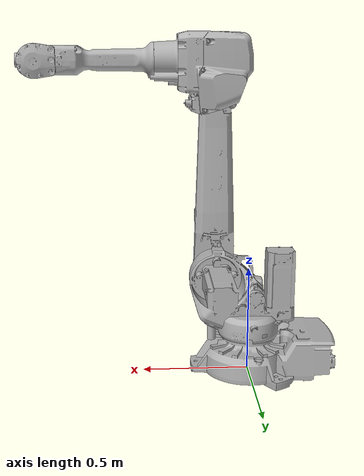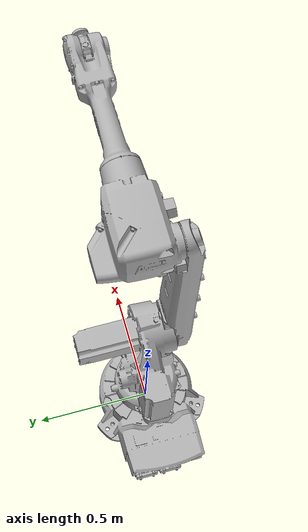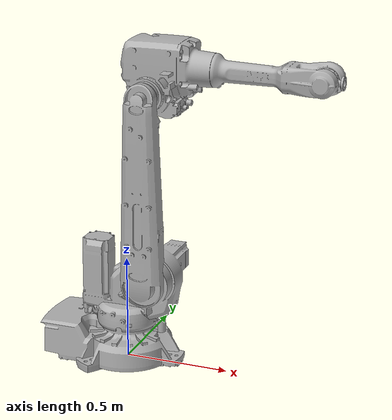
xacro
<?xml version="1.0" ?>
<robot name="IRB2600_12kg-185" xmlns:xacro="http://www.ros.org/wiki/xacro">

<xacro:include filename="$(find IRB2600_12kg-185_description)/urdf/materials.xacro" />
<xacro:include filename="$(find IRB2600_12kg-185_description)/urdf/IRB2600_12kg-185.trans" />
<xacro:include filename="$(find IRB2600_12kg-185_description)/urdf/IRB2600_12kg-185.gazebo" />
<link name="base_link">
  <inertial>
    <origin xyz="-0.09299244505879704 0.00040023906755372736 0.09590244830640034" rpy="0 0 0"/>
    <mass value="250.4884403422575"/>
    <inertia ixx="3.308396" iyy="6.826966" izz="8.611106" ixy="0.029678" iyz="0.002181" ixz="0.180461"/>
  </inertial>
  <visual>
    <origin xyz="0 0 0" rpy="0 0 0"/>
    <geometry>
      <mesh filename="package://IRB2600_12kg-185_description/meshes/base_link.stl" scale="0.001 0.001 0.001"/>
    </geometry>
    <material name="silver"/>
  </visual>
  <collision>
    <origin xyz="0 0 0" rpy="0 0 0"/>
    <geometry>
      <mesh filename="package://IRB2600_12kg-185_description/meshes/base_link.stl" scale="0.001 0.001 0.001"/>
    </geometry>
  </collision>
</link>

<link name="IRB2600_12kg-185_LINK1_CAD_rev02_v1_1">
  <inertial>
    <origin xyz="0.043083885652768904 0.007026630410738739 0.15972284536270456" rpy="0 0 0"/>
    <mass value="187.86725665499122"/>
    <inertia ixx="3.104491" iyy="4.749737" izz="4.49943" ixy="-0.075738" iyz="-0.046785" ixz="-0.326302"/>
  </inertial>
  <visual>
    <origin xyz="-0.0 0.0 -0.23" rpy="0 0 0"/>
    <geometry>
      <mesh filename="package://IRB2600_12kg-185_description/meshes/IRB2600_12kg-185_LINK1_CAD_rev02_v1_1.stl" scale="0.001 0.001 0.001"/>
    </geometry>
    <material name="silver"/>
  </visual>
  <collision>
    <origin xyz="-0.0 0.0 -0.23" rpy="0 0 0"/>
    <geometry>
      <mesh filename="package://IRB2600_12kg-185_description/meshes/IRB2600_12kg-185_LINK1_CAD_rev02_v1_1.stl" scale="0.001 0.001 0.001"/>
    </geometry>
  </collision>
</link>

<link name="IRB2600_12kg-185_LINK2_CAD_rev02_v1_1">
  <inertial>
    <origin xyz="6.157429664951919e-05 -0.032067744454000485 0.4139951965264645" rpy="0 0 0"/>
    <mass value="123.67875317396543"/>
    <inertia ixx="8.66843" iyy="8.820388" izz="0.379501" ixy="-2.3e-05" iyz="0.046036" ixz="0.002046"/>
  </inertial>
  <visual>
    <origin xyz="-0.15 0.1404 -0.445" rpy="0 0 0"/>
    <geometry>
      <mesh filename="package://IRB2600_12kg-185_description/meshes/IRB2600_12kg-185_LINK2_CAD_rev02_v1_1.stl" scale="0.001 0.001 0.001"/>
    </geometry>
    <material name="silver"/>
  </visual>
  <collision>
    <origin xyz="-0.15 0.1404 -0.445" rpy="0 0 0"/>
    <geometry>
      <mesh filename="package://IRB2600_12kg-185_description/meshes/IRB2600_12kg-185_LINK2_CAD_rev02_v1_1.stl" scale="0.001 0.001 0.001"/>
    </geometry>
  </collision>
</link>

<link name="IRB2600_12kg-185_LINK3_CAD_rev02_v1_1">
  <inertial>
    <origin xyz="0.04325811435517962 0.16175942191743298 0.07526273124689742" rpy="0 0 0"/>
    <mass value="185.64435614731826"/>
    <inertia ixx="2.301697" iyy="3.156452" izz="2.719429" ixy="0.061805" iyz="0.076342" ixz="-0.145259"/>
  </inertial>
  <visual>
    <origin xyz="-0.15 0.1478 -1.345" rpy="0 0 0"/>
    <geometry>
      <mesh filename="package://IRB2600_12kg-185_description/meshes/IRB2600_12kg-185_LINK3_CAD_rev02_v1_1.stl" scale="0.001 0.001 0.001"/>
    </geometry>
    <material name="silver"/>
  </visual>
  <collision>
    <origin xyz="-0.15 0.1478 -1.345" rpy="0 0 0"/>
    <geometry>
      <mesh filename="package://IRB2600_12kg-185_description/meshes/IRB2600_12kg-185_LINK3_CAD_rev02_v1_1.stl" scale="0.001 0.001 0.001"/>
    </geometry>
  </collision>
</link>

<link name="IRB2600_12kg-185_LINK4_CAD_rev04_v1_1">
  <inertial>
    <origin xyz="0.31280101664090953 0.0011968543750776148 0.0003121191301937998" rpy="0 0 0"/>
    <mass value="48.864516591374674"/>
    <inertia ixx="0.117498" iyy="1.400385" izz="1.428184" ixy="-0.011586" iyz="0.000123" ixz="-0.001339"/>
  </inertial>
  <visual>
    <origin xyz="-0.4375 0.0 -1.46" rpy="0 0 0"/>
    <geometry>
      <mesh filename="package://IRB2600_12kg-185_description/meshes/IRB2600_12kg-185_LINK4_CAD_rev04_v1_1.stl" scale="0.001 0.001 0.001"/>
    </geometry>
    <material name="silver"/>
  </visual>
  <collision>
    <origin xyz="-0.4375 0.0 -1.46" rpy="0 0 0"/>
    <geometry>
      <mesh filename="package://IRB2600_12kg-185_description/meshes/IRB2600_12kg-185_LINK4_CAD_rev04_v1_1.stl" scale="0.001 0.001 0.001"/>
    </geometry>
  </collision>
</link>

<link name="IRB2600_12kg-185_LINK5_CAD_rev03_v1_1">
  <inertial>
    <origin xyz="0.00023502616134241094 0.02047728152395953 0.0008927313576323481" rpy="0 0 0"/>
    <mass value="2.907776365322295"/>
    <inertia ixx="0.002453" iyy="0.004274" izz="0.002691" ixy="3e-06" iyz="-2e-06" ixz="4.7e-05"/>
  </inertial>
  <visual>
    <origin xyz="-0.945 0.0205 -1.46" rpy="0 0 0"/>
    <geometry>
      <mesh filename="package://IRB2600_12kg-185_description/meshes/IRB2600_12kg-185_LINK5_CAD_rev03_v1_1.stl" scale="0.001 0.001 0.001"/>
    </geometry>
    <material name="silver"/>
  </visual>
  <collision>
    <origin xyz="-0.945 0.0205 -1.46" rpy="0 0 0"/>
    <geometry>
      <mesh filename="package://IRB2600_12kg-185_description/meshes/IRB2600_12kg-185_LINK5_CAD_rev03_v1_1.stl" scale="0.001 0.001 0.001"/>
    </geometry>
  </collision>
</link>

<link name="IRB2600_12kg-185_LINK6_CAD_rev02_v1_1">
  <inertial>
    <origin xyz="0.021277501296827595 3.527954797865816e-05 -0.0002077564977258639" rpy="0 0 0"/>
    <mass value="0.38385347785024865"/>
    <inertia ixx="0.000151" iyy="0.000109" izz="0.000111" ixy="-0.0" iyz="-0.0" ixz="1e-06"/>
  </inertial>
  <visual>
    <origin xyz="-0.996 -0.0 -1.46" rpy="0 0 0"/>
    <geometry>
      <mesh filename="package://IRB2600_12kg-185_description/meshes/IRB2600_12kg-185_LINK6_CAD_rev02_v1_1.stl" scale="0.001 0.001 0.001"/>
    </geometry>
    <material name="silver"/>
  </visual>
  <collision>
    <origin xyz="-0.996 -0.0 -1.46" rpy="0 0 0"/>
    <geometry>
      <mesh filename="package://IRB2600_12kg-185_description/meshes/IRB2600_12kg-185_LINK6_CAD_rev02_v1_1.stl" scale="0.001 0.001 0.001"/>
    </geometry>
  </collision>
</link>

<joint name="j1" type="continuous">
  <origin xyz="0.0 0.0 0.23" rpy="0 0 0"/>
  <parent link="base_link"/>
  <child link="IRB2600_12kg-185_LINK1_CAD_rev02_v1_1"/>
  <axis xyz="0.0 0.0 -1.0"/>
</joint>

<joint name="j2" type="continuous">
  <origin xyz="0.15 -0.1404 0.215" rpy="0 0 0"/>
  <parent link="IRB2600_12kg-185_LINK1_CAD_rev02_v1_1"/>
  <child link="IRB2600_12kg-185_LINK2_CAD_rev02_v1_1"/>
  <axis xyz="0.0 -1.0 0.0"/>
</joint>

<joint name="j3" type="continuous">
  <origin xyz="0.0 -0.0074 0.9" rpy="0 0 0"/>
  <parent link="IRB2600_12kg-185_LINK2_CAD_rev02_v1_1"/>
  <child link="IRB2600_12kg-185_LINK3_CAD_rev02_v1_1"/>
  <axis xyz="0.0 1.0 0.0"/>
</joint>

<joint name="j4" type="continuous">
  <origin xyz="0.2875 0.1478 0.115" rpy="0 0 0"/>
  <parent link="IRB2600_12kg-185_LINK3_CAD_rev02_v1_1"/>
  <child link="IRB2600_12kg-185_LINK4_CAD_rev04_v1_1"/>
  <axis xyz="1.0 0.0 0.0"/>
</joint>

<joint name="j5" type="continuous">
  <origin xyz="0.5075 -0.0205 0.0" rpy="0 0 0"/>
  <parent link="IRB2600_12kg-185_LINK4_CAD_rev04_v1_1"/>
  <child link="IRB2600_12kg-185_LINK5_CAD_rev03_v1_1"/>
  <axis xyz="0.0 -1.0 0.0"/>
</joint>

<joint name="j6" type="continuous">
  <origin xyz="0.051 0.0205 0.0" rpy="0 0 0"/>
  <parent link="IRB2600_12kg-185_LINK5_CAD_rev03_v1_1"/>
  <child link="IRB2600_12kg-185_LINK6_CAD_rev02_v1_1"/>
  <axis xyz="1.0 0.0 0.0"/>
</joint>

</robot>

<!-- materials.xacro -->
<robot name="IRB2600_12kg-185" xmlns:xacro="http://www.ros.org/wiki/xacro" >

<material name="silver">
  <color rgba="0.700 0.700 0.700 1.000"/>
</material>

</robot>

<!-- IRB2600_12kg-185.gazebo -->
<robot name="IRB2600_12kg-185" xmlns:xacro="http://www.ros.org/wiki/xacro" >

<xacro:property name="body_color" value="Gazebo/Silver" />

<gazebo>
  <plugin name="control" filename="libgazebo_ros_control.so"/>
</gazebo>
<gazebo reference="base_link">
  <material>${body_color}</material>
  <mu1>0.2</mu1>
  <mu2>0.2</mu2>
  <selfCollide>true</selfCollide>
  <gravity>true</gravity>
</gazebo>

<gazebo reference="IRB2600_12kg-185_LINK1_CAD_rev02_v1_1">
  <material>${body_color}</material>
  <mu1>0.2</mu1>
  <mu2>0.2</mu2>
  <selfCollide>true</selfCollide>
</gazebo>

<gazebo reference="IRB2600_12kg-185_LINK2_CAD_rev02_v1_1">
  <material>${body_color}</material>
  <mu1>0.2</mu1>
  <mu2>0.2</mu2>
  <selfCollide>true</selfCollide>
</gazebo>

<gazebo reference="IRB2600_12kg-185_LINK3_CAD_rev02_v1_1">
  <material>${body_color}</material>
  <mu1>0.2</mu1>
  <mu2>0.2</mu2>
  <selfCollide>true</selfCollide>
</gazebo>

<gazebo reference="IRB2600_12kg-185_LINK4_CAD_rev04_v1_1">
  <material>${body_color}</material>
  <mu1>0.2</mu1>
  <mu2>0.2</mu2>
  <selfCollide>true</selfCollide>
</gazebo>

<gazebo reference="IRB2600_12kg-185_LINK5_CAD_rev03_v1_1">
  <material>${body_color}</material>
  <mu1>0.2</mu1>
  <mu2>0.2</mu2>
  <selfCollide>true</selfCollide>
</gazebo>

<gazebo reference="IRB2600_12kg-185_LINK6_CAD_rev02_v1_1">
  <material>${body_color}</material>
  <mu1>0.2</mu1>
  <mu2>0.2</mu2>
  <selfCollide>true</selfCollide>
</gazebo>

</robot>
